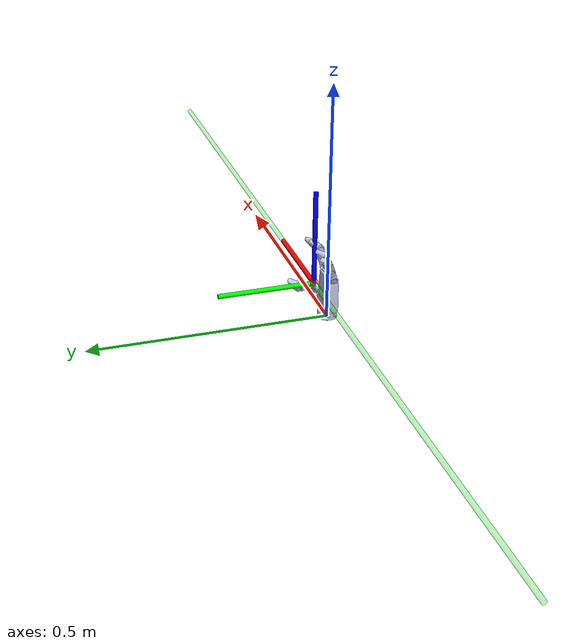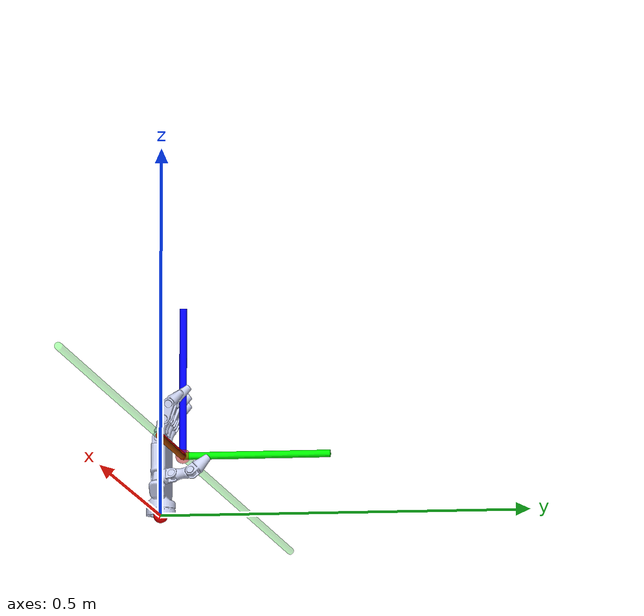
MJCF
<mujoco model="hand_left_sim">
    <compiler angle="radian" meshdir="/home/kavin/Documents/RosProjects/robot_ws/src/hand_left_sim/meshes/"/>

    <default>
        <geom density="5.0"/>
        <default class="joint">
            <joint axis="1 0 0" range="0 1.57" damping="1" limited="true" armature="0.0002" frictionloss="0.01"/>
            <position kp="8" ctrlrange="0 2.14"/>
        </default>
    </default>
    <size njmax="500" nconmax="100" />
    <asset>
        <mesh name="palm_left" file="palm_left.STL" />
        <mesh name="finger_11_left" file="finger_11_left.STL" />
        <mesh name="finger_12_left" file="finger_12_left.STL" />
        <mesh name="finger_13_left" file="finger_13_left.STL" />
        <mesh name="finger_14_left" file="finger_14_left.STL" />
        <mesh name="finger_21_left" file="finger_21_left.STL" />
        <mesh name="finger_22_left" file="finger_22_left.STL" />
        <mesh name="finger_23_left" file="finger_23_left.STL" />
        <mesh name="finger_31_left" file="finger_31_left.STL" />
        <mesh name="finger_32_left" file="finger_32_left.STL" />
        <mesh name="finger_33_left" file="finger_33_left.STL" />
        <mesh name="finger_41_left" file="finger_41_left.STL" />
        <mesh name="finger_42_left" file="finger_42_left.STL" />
        <mesh name="finger_43_left" file="finger_43_left.STL" />
        <mesh name="finger_51_left" file="finger_51_left.STL" />
        <mesh name="finger_52_left" file="finger_52_left.STL" />
        <mesh name="finger_53_left" file="finger_53_left.STL" />
    </asset>
    <worldbody>
        <body name="palm_left">
            <site name="ft_frame" pos="0 0 0" size="0.01 0.01 0.01" rgba="1 0 0 1" type="sphere" group="1"/>
            <body name="eef" pos="0 0.03 0.08">
                <site name="grip_site" pos="0 0 0" size="0.01 0.01 0.01" rgba="1 0 0 0.5" type="sphere" group="1"/>
                <site name="ee_x" pos="0.1 0 0" size="0.005 .1" quat="0.707105  0 0.707108 0 " rgba="1 0 0 1" type="cylinder" group="1"/>
                <site name="ee_y" pos="0 0.1 0" size="0.005 .1" quat="0.707105 0.707108 0 0" rgba="0 1 0 1" type="cylinder" group="1"/>
                <site name="ee_z" pos="0 0 0.1" size="0.005 .1" quat="1 0 0 0" rgba="0 0 1 1" type="cylinder" group="1"/>
                <site name="grip_site_cylinder" pos="0 0 0" size="0.005 1" quat="0.707105  0 0.707108 0 " rgba="0 1 0 0.3" type="cylinder" group="1"/>
            </body>

            <geom type="mesh" contype="0" conaffinity="0" group="1" rgba="0.792157 0.819608 0.933333 1" mesh="palm_left" />
            <geom type="mesh" rgba="0.792157 0.819608 0.933333 1" mesh="palm_left" />
            <body name="finger_11_left" pos="0.033156 0 0.046854" quat="0.297559 -0.369215 -0.55247 -0.685504">
                <inertial pos="0 0 0.00296384" quat="0.707107 0 0 0.707107" mass="0.00158261" diaginertia="6.47978e-08 5.66929e-08 5.56708e-08" />
                <geom type="mesh" contype="0" conaffinity="0" group="1" rgba="0.792157 0.819608 0.933333 1" mesh="finger_11_left" />
                <geom type="mesh" rgba="0.792157 0.819608 0.933333 1" mesh="finger_11_left" />
                <body name="finger_12_left" pos="0 0 0.005" quat="0.754142 0 0 -0.656712">
                    <inertial pos="-1.10006e-10 -1.04833e-11 0.00925016" quat="0.707107 0 0 0.707107" mass="0.00237615" diaginertia="1.18675e-07 1.15819e-07 1.06634e-07" />
                    <geom type="mesh" contype="0" conaffinity="0" group="1" rgba="0.792157 0.819608 0.933333 1" mesh="finger_12_left" />
                    <geom type="mesh" rgba="0.792157 0.819608 0.933333 1" mesh="finger_12_left" />
                    <body name="finger_13_left" pos="0 0 0.016267">
                        <inertial pos="3.45763e-07 -1.59038e-07 0.0147549" quat="0.706509 5.62844e-06 3.29454e-07 0.707704" mass="0.0047752" diaginertia="5.13056e-07 5.06525e-07 1.11822e-07" />
                        <joint class="joint" name="j_13_left" axis="-1 0 0"/>
                        <geom type="mesh" contype="0" conaffinity="0" group="1" rgba="0.792157 0.819608 0.933333 1" mesh="finger_13_left" />
                        <geom type="mesh" rgba="0.792157 0.819608 0.933333 1" mesh="finger_13_left" />
                        <body name="finger_14_left" pos="0 0 0.028233" quat="0.939693 -0.342019 0 0">
                            <inertial pos="1.25782e-05 -0.000148502 0.0147394" quat="0.704716 0.00742825 -0.00610753 0.709424" mass="0.00459559" diaginertia="3.58606e-07 3.47268e-07 1.55217e-07" />
                            <geom type="mesh" contype="0" conaffinity="0" group="1" rgba="0.792157 0.819608 0.933333 1" mesh="finger_14_left" />
                            <geom type="mesh" rgba="0.792157 0.819608 0.933333 1" mesh="finger_14_left" />
                        </body>
                    </body>
                </body>
            </body>
            <body name="finger_21_left" pos="0.023151 -0.00042188 0.10268" quat="-0.0254504 0.144313 0.171776 0.974176">
                <inertial pos="-3.21564e-08 -2.51554e-07 0.0147548" quat="0.706869 4.57534e-06 -4.57842e-06 0.707345" mass="0.00477507" diaginertia="5.13037e-07 5.06539e-07 1.11818e-07" />
                <joint class="joint" name="j_21_left"/>
                <geom type="mesh" contype="0" conaffinity="0" group="1" rgba="0.792157 0.819608 0.933333 1" mesh="finger_21_left" />
                <geom type="mesh" rgba="0.792157 0.819608 0.933333 1" mesh="finger_21_left" />
                <body name="finger_22_left" pos="0 0 0.028233">
                    <inertial pos="0 0 0.0105" mass="0.00239726" diaginertia="1.69655e-07 1.65763e-07 9.58619e-08" />
                    <joint class="joint" name="j_22_left"/>
                    <geom type="mesh" contype="0" conaffinity="0" group="1" rgba="0.792157 0.819608 0.933333 1" mesh="finger_22_left" />
                    <geom type="mesh" rgba="0.792157 0.819608 0.933333 1" mesh="finger_22_left" />
                    <body name="finger_23_left" pos="0 0 0.021" quat="0.965926 0.25882 0 0">
                        <inertial pos="1.83197e-05 -3.04598e-05 0.00921809" quat="0.713621 0.00165347 0.000480626 0.70053" mass="0.00351083" diaginertia="2.40711e-07 2.34319e-07 7.61093e-08" />
                        <geom type="mesh" contype="0" conaffinity="0" group="1" rgba="0.792157 0.819608 0.933333 1" mesh="finger_23_left" />
                        <geom type="mesh" rgba="0.792157 0.819608 0.933333 1" mesh="finger_23_left" />
                    </body>
                </body>
            </body>
            <body name="finger_31_left" pos="0.003285 -0.00042186 0.10558" quat="-3.6174e-06 -6.37853e-07 0.17365 0.984807">
                <inertial pos="3.59589e-08 -2.44788e-07 0.0147121" quat="0.707337 -4.6115e-06 4.6085e-06 0.706876" mass="0.00477507" diaginertia="5.13037e-07 5.06539e-07 1.11818e-07" />
                <joint class="joint" name="j_31_left"/>
                <geom type="mesh" contype="0" conaffinity="0" group="1" rgba="0.792157 0.819608 0.933333 1" mesh="finger_31_left" />
                <geom type="mesh" rgba="0.792157 0.819608 0.933333 1" mesh="finger_31_left" />
                <body name="finger_32_left" pos="0 0 0.028233">
                    <inertial pos="0 0 0.0125" mass="0.00316954" diaginertia="2.43247e-07 2.35819e-07 1.2078e-07" />
                    <joint class="joint" name="j_32_left"/>
                    <geom type="mesh" contype="0" conaffinity="0" group="1" rgba="0.792157 0.819608 0.933333 1" mesh="finger_32_left" />
                    <geom type="mesh" rgba="0.792157 0.819608 0.933333 1" mesh="finger_32_left" />
                    <body name="finger_33_left" pos="0 0 0.025" quat="0.965926 0.25882 0 0">
                        <inertial pos="1.96125e-05 -3.05341e-05 0.0109935" quat="0.713662 0.00131218 0.000487819 0.700489" mass="0.00407938" diaginertia="3.44989e-07 3.3759e-07 9.02118e-08" />
                        <geom type="mesh" contype="0" conaffinity="0" group="1" rgba="0.792157 0.819608 0.933333 1" mesh="finger_33_left" />
                        <geom type="mesh" rgba="0.792157 0.819608 0.933333 1" mesh="finger_33_left" />
                    </body>
                </body>
            </body>
            <body name="finger_41_left" pos="-0.015852 -0.00042186 0.10376" quat="0.0169705 -0.0962642 0.172818 0.980091">
                <inertial pos="3.37177e-08 -2.44971e-07 0.0147121" quat="0.70734 -4.61409e-06 4.61104e-06 0.706874" mass="0.00477507" diaginertia="5.13037e-07 5.06539e-07 1.11818e-07" />
                <joint class="joint" name="j_41_left"/>
                <geom type="mesh" contype="0" conaffinity="0" group="1" rgba="0.792157 0.819608 0.933333 1" mesh="finger_41_left" />
                <geom type="mesh" rgba="0.792157 0.819608 0.933333 1" mesh="finger_41_left" />
                <body name="finger_42_left" pos="0 0 0.028233">
                    <inertial pos="0 0 0.011" mass="0.00259033" diaginertia="1.86013e-07 1.81238e-07 1.02092e-07" />
                    <joint class="joint" name="j_42_left"/>
                    <geom type="mesh" contype="0" conaffinity="0" group="1" rgba="0.792157 0.819608 0.933333 1" mesh="finger_42_left" />
                    <geom type="mesh" rgba="0.792157 0.819608 0.933333 1" mesh="finger_42_left" />
                    <body name="finger_43_left" pos="0 0 0.022" quat="0.965926 0.25882 0 0">
                        <inertial pos="1.84179e-05 -3.05101e-05 0.00921808" quat="0.713506 0.0016555 0.000480819 0.700647" mass="0.00351081" diaginertia="2.40712e-07 2.34317e-07 7.61094e-08" />
                        <geom type="mesh" contype="0" conaffinity="0" group="1" rgba="0.792157 0.819608 0.933333 1" mesh="finger_43_left" />
                        <geom type="mesh" rgba="0.792157 0.819608 0.933333 1" mesh="finger_43_left" />
                    </body>
                </body>
            </body>
            <body name="finger_51_left" pos="-0.032224 -0.00042186 0.099812" quat="0.0245625 -0.13932 0.171903 0.974903">
                <inertial pos="3.37177e-08 -2.44971e-07 0.0147121" quat="0.70734 -4.61409e-06 4.61104e-06 0.706874" mass="0.00477507" diaginertia="5.13037e-07 5.06539e-07 1.11818e-07" />
                <joint class="joint" name="j_51_left"/>
                <geom type="mesh" contype="0" conaffinity="0" group="1" rgba="0.792157 0.819608 0.933333 1" mesh="finger_51_left" />
                <geom type="mesh" rgba="0.792157 0.819608 0.933333 1" mesh="finger_51_left" />
                <body name="finger_52_left" pos="0 0 0.028233">
                    <inertial pos="0 0 0.01" mass="0.00220419" diaginertia="1.54494e-07 1.51487e-07 8.96323e-08" />
                    <joint class="joint" name="j_52_left"/>
                    <geom type="mesh" contype="0" conaffinity="0" group="1" rgba="0.792157 0.819608 0.933333 1" mesh="finger_52_left" />
                    <geom type="mesh" rgba="0.792157 0.819608 0.933333 1" mesh="finger_52_left" />
                    <body name="finger_53_left" pos="0 0 0.02" quat="0.965926 0.25882 0 0">
                        <inertial pos="1.79326e-05 -3.13912e-05 0.0078541" quat="0.712012 0.00207042 0.000428977 0.702164" mass="0.00308469" diaginertia="1.78802e-07 1.7304e-07 6.55997e-08" />
                        <geom type="mesh" contype="0" conaffinity="0" group="1" rgba="0.792157 0.819608 0.933333 1" mesh="finger_53_left" />
                        <geom type="mesh" rgba="0.792157 0.819608 0.933333 1" mesh="finger_53_left" />
                    </body>
                </body>
            </body>
        </body>
    </worldbody>

    <contact>
        <exclude body1="palm_left" body2="finger_11_left"/>
        <exclude body1="palm_left" body2="finger_12_left"/>
        <exclude body1="palm_left" body2="finger_21_left"/>
        <exclude body1="palm_left" body2="finger_31_left"/>
        <exclude body1="palm_left" body2="finger_41_left"/>
        <exclude body1="palm_left" body2="finger_51_left"/>
    </contact>

    <tendon>
        <fixed name="j_20_left">
            <joint joint="j_21_left" coef="1"/>
            <joint joint="j_22_left" coef="1"/>
        </fixed>
        <fixed name="j_30_left">
            <joint joint="j_31_left" coef="1"/>
            <joint joint="j_32_left" coef="1"/>
        </fixed>
        <fixed name="j_40_left">
            <joint joint="j_41_left" coef="1"/>
            <joint joint="j_42_left" coef="1"/>
        </fixed>
        <fixed name="j_50_left">
            <joint joint="j_51_left" coef="1"/>
            <joint joint="j_52_left" coef="1"/>
        </fixed>
    </tendon>

    <actuator>
        <position class="joint" name="j13_left_T" joint="j_13_left" ctrllimited="true" ctrlrange="0 0.5"/>
        <position class="joint" name="j20_left_T" tendon="j_20_left" ctrllimited="true" ctrlrange="0 2.14" />
        <position class="joint" name="j30_left_T" tendon="j_30_left" ctrllimited="true" ctrlrange="0 2.14" />
        <position class="joint" name="j40_left_T" tendon="j_40_left" ctrllimited="true" ctrlrange="0 2.14" />
        <position class="joint" name="j50_left_T" tendon="j_50_left" ctrllimited="true" ctrlrange="0 2.14" />
    </actuator>
    <sensor>
        <force name="force_ee" site="ft_frame"/>
        <torque name="torque_ee" site="ft_frame"/>
    </sensor>
</mujoco>
